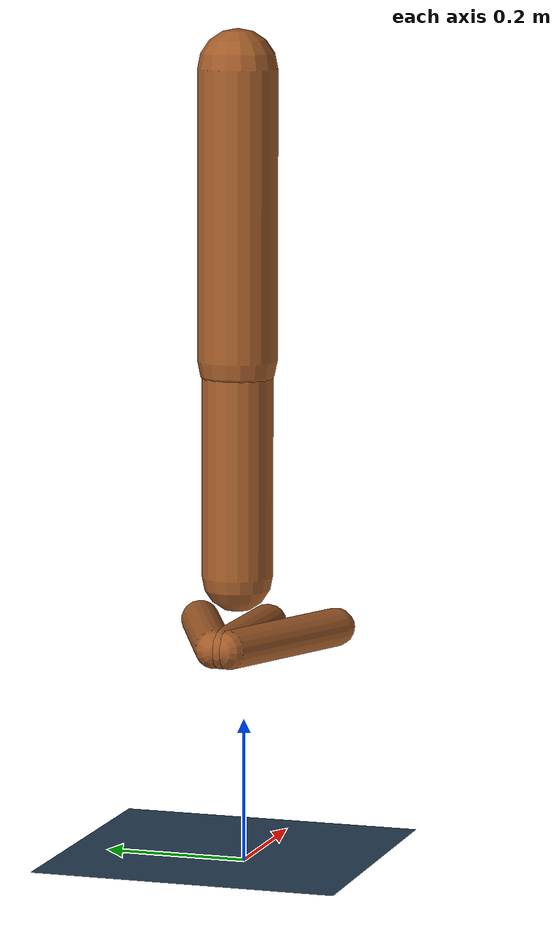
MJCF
<mujoco model="lower_right_leg">
<option timestep="0.005"/>

<!-- ======================================================
     ASSETS
======================================================= -->
<asset>
  <texture name="body" type="cube" builtin="flat" mark="cross"
           width="128" height="128"
           rgb1="0.8 0.6 0.4" rgb2="0.8 0.6 0.4" markrgb="1 1 1"/>
  <material name="body" texture="body" texuniform="true" rgba="0.8 0.6 .4 1"/>

  <texture name="grid" type="2d" builtin="checker"
           width="512" height="512" rgb1=".1 .2 .3" rgb2=".2 .3 .4"/>
  <material name="grid" texture="grid" texrepeat="1 1"
            texuniform="true" reflectance=".2"/>
</asset>

<!-- ======================================================
     DEFAULTS  (must come before worldbody)
======================================================= -->
<default>
  <motor ctrlrange="-1 1" ctrllimited="true"/>

  <default class="body">
    <geom type="capsule" condim="1" friction=".7"
          solimp=".9 .99 .003" solref=".015 1" material="body" group="1"/>
    <joint type="hinge" damping=".2" stiffness="1" armature=".01"
           limited="true" solimplimit="0 .99 .01"/>

    <default class="thigh">
      <geom fromto="0 0 0  0 0 -.4" size=".055"/>
    </default>

    <default class="shin">
      <geom fromto="0 0 0  0 0 -.3" size=".049"/>
    </default>

    <default class="hip">
      <joint pos="0 0 0" axis="0 1 0" range="-60 90"
             damping=".3" stiffness="2"/>
    </default>

    <default class="knee">
      <joint pos="0 0 .02" axis="0 -1 0" range="-160 2"/>
    </default>

    <default class="ankle">
      <joint range="-90 90"/>
      <default class="ankle_y">
        <joint pos="0 0 .08" axis="0 1 0" stiffness="6"/>
      </default>
      <default class="ankle_x">
        <joint pos="0 0 .04" stiffness="3"/>
      </default>
    </default>
  </default>

  <default class="foot1">
    <geom type="capsule" size=".027" fromto="-.07 -.01 0  .14 -.1 0"
          material="body" condim="1" friction=".7"
          solimp=".9 .99 .003" solref=".015 1" group="1"/>
  </default>
  <default class="foot2">
    <geom type="capsule" size=".027" fromto="-.07 .00 0  .14 .00 0"
          material="body" condim="1" friction=".7"
          solimp=".9 .99 .003" solref=".015 1" group="0"/>
  </default>
  <default class="foot3">
    <geom type="capsule" size=".027" fromto="-.07 .01 0  .14 .1 0"
          material="body" condim="1" friction=".7"
          solimp=".9 .99 .003" solref=".015 1" group="1"/>
  </default>
</default>

<!-- ======================================================
     WORLDBODY
======================================================= -->
<worldbody>
  <geom name="floor" size="0 0 .05" type="plane"
        material="grid" condim="3"/>
  <light name="top" pos="0 0 3" dir="0 0 -1" diffuse=".9 .9 .9"/>

  <!-- Anchor at hip height: 1.1m = 40cm thigh + 30cm shin + ~40cm clearance -->
  <body name="anchor" pos="0 0 1.1" childclass="body">

    <body name="thigh_right" pos="0 .01 0">
      <joint name="hip_right"   class="hip"/>
      <geom  name="thigh_right" class="thigh"/>

      <!-- Knee is at the bottom of the thigh, 40cm down -->
      <body name="shin_right" pos="0 0 -.4">
        <joint name="knee_right"   class="knee"/>
        <geom  name="shin_right"   class="shin"/>

        <!-- Ankle is 39cm below the knee -->
        <body name="foot_right" pos="0 0 -.39">
          <joint name="ankle_y_right" class="ankle_y"/>
          <joint name="ankle_x_right" class="ankle_x" axis="1 0 .5"/>
          <geom  name="foot1_right"   class="foot1"/>
          <geom  name="foot2_right"   class="foot2"/>
          <geom  name="foot3_right"   class="foot3"/>
        </body><!-- end foot_right -->

      </body><!-- end shin_right -->
    </body><!-- end thigh_right -->

  </body><!-- end anchor -->
</worldbody>

<!-- ======================================================
     ACTUATORS
     qpos / ctrl order: hip, knee, ankle_y, ankle_x
======================================================= -->
<actuator>
  <motor name="hip_right"     gear="120" joint="hip_right"/>
  <motor name="knee_right"    gear="80"  joint="knee_right"/>
  <motor name="ankle_y_right" gear="20"  joint="ankle_y_right"/>
  <motor name="ankle_x_right" gear="20"  joint="ankle_x_right"/>
</actuator>

<!-- ======================================================
     KEYFRAME
     qpos order: hip_right | knee_right | ankle_y | ankle_x
======================================================= -->
<keyframe>
  <key name="stand" qpos="0 0 0 0"/>
</keyframe>

</mujoco>
